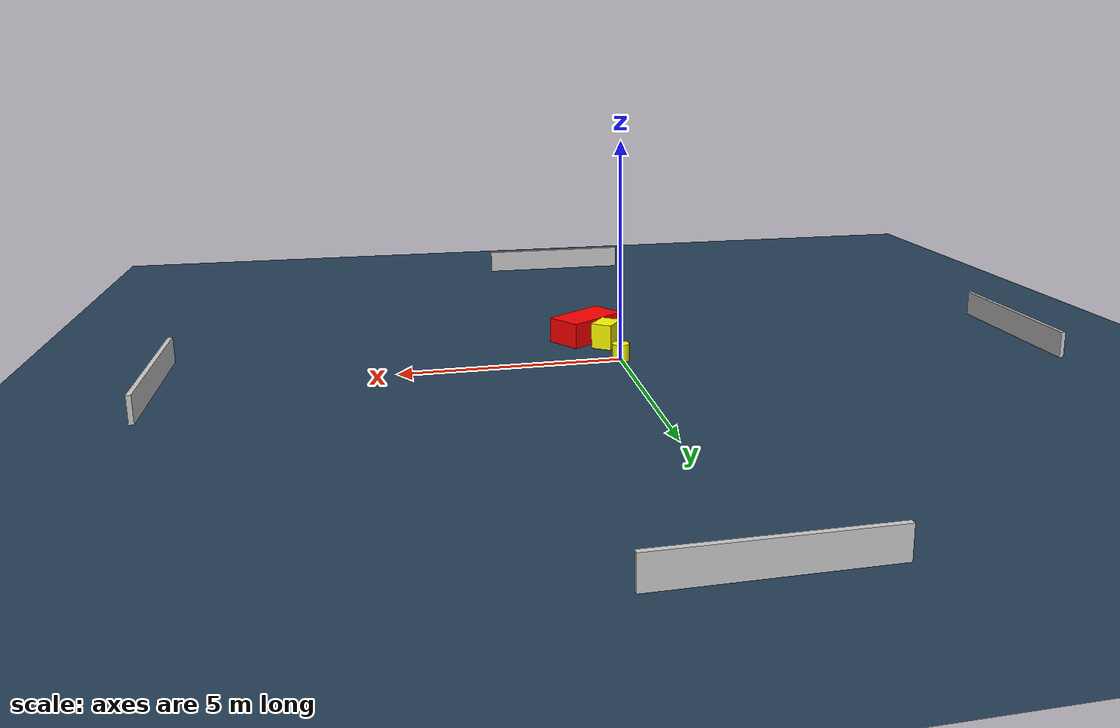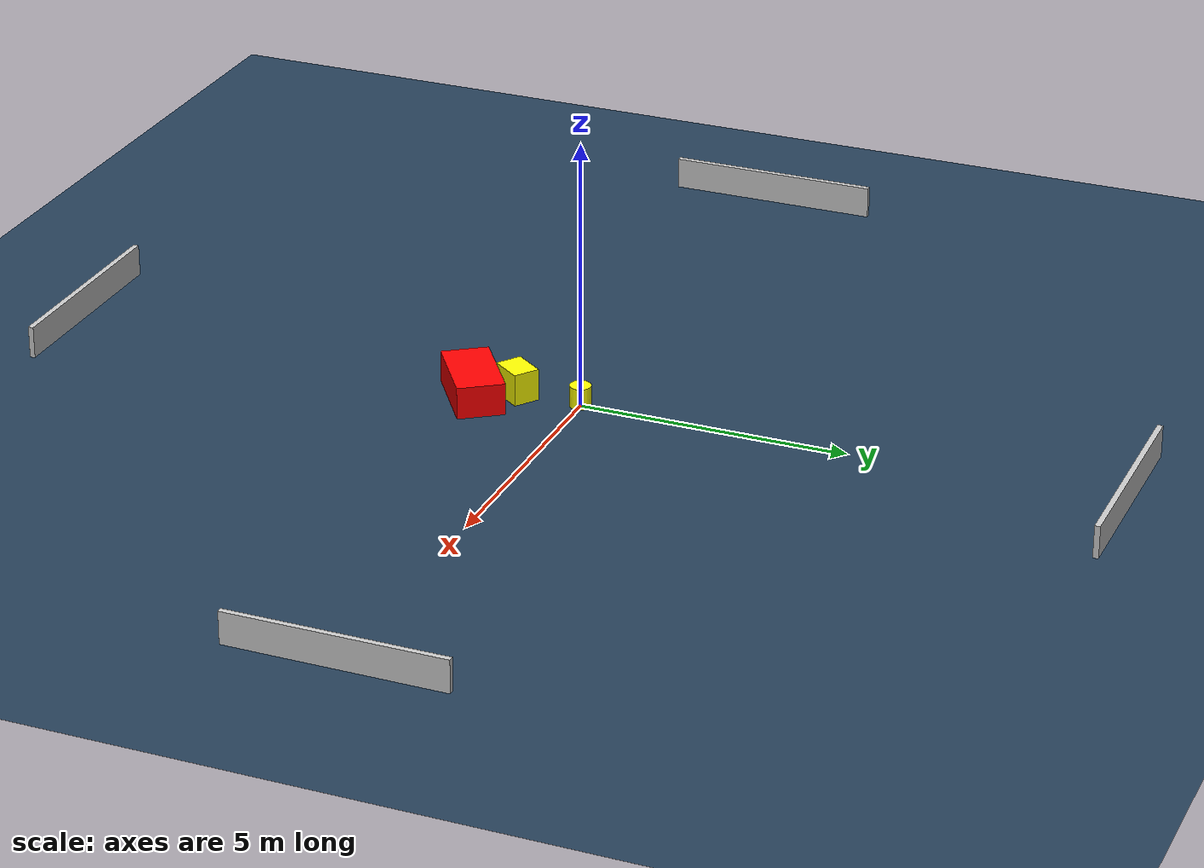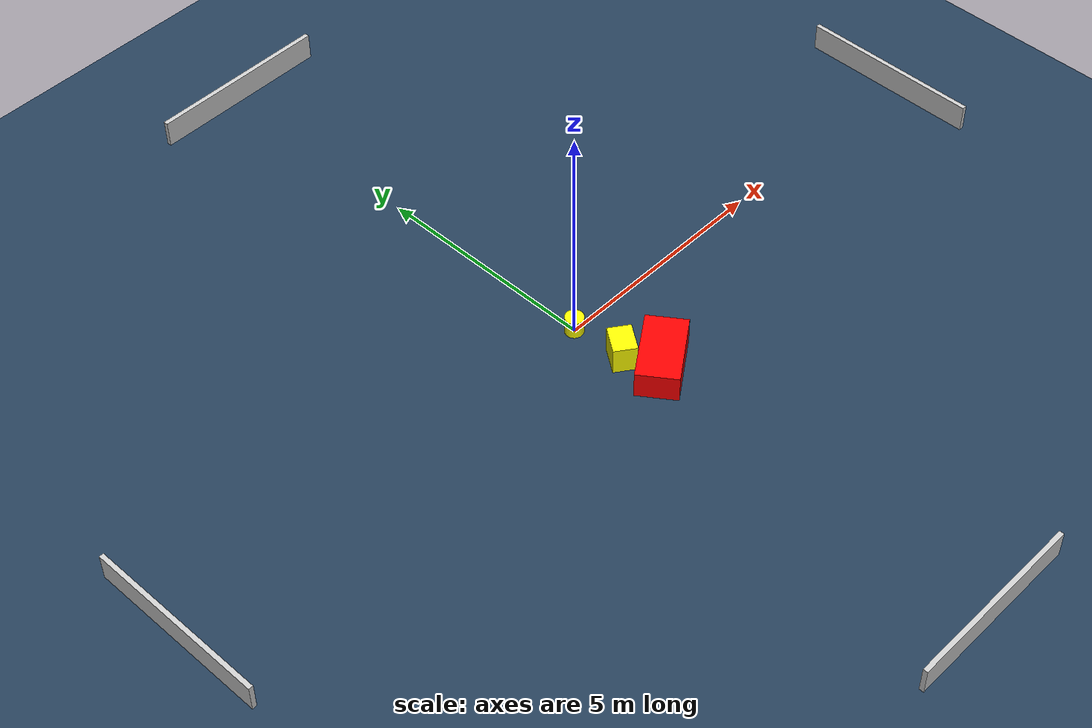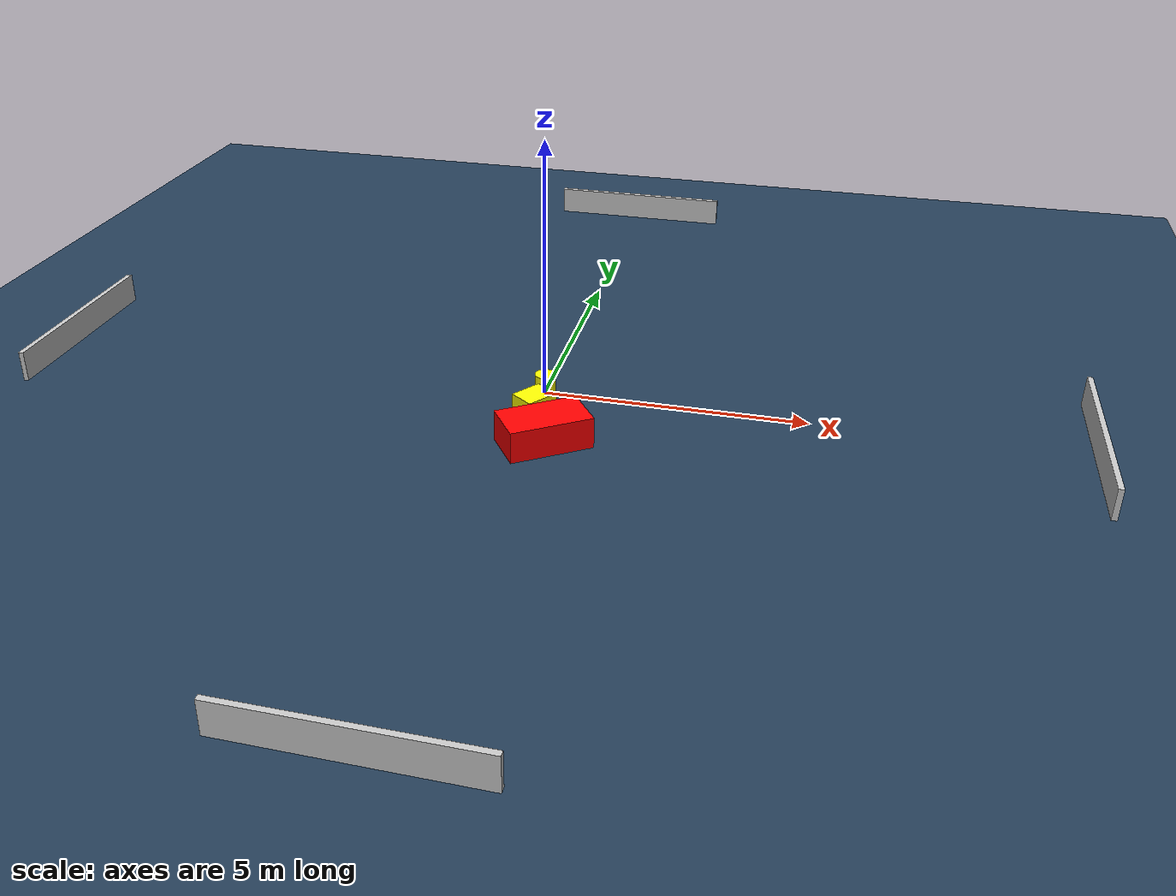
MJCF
<?xml version="1.0" ?>
<mujoco model="generated_environment">
  <option timestep="0.01" integrator="RK4" cone="elliptic"/>
  <default>
    <geom density="1"/>
  </default>
  <asset>
    <texture builtin="gradient" height="3072" name="skybox" rgb1="0.3 0.5 0.7" rgb2="0 0 0" type="skybox" width="512"/>
    <texture builtin="checker" height="300" name="groundplane" rgb1="0.2 0.3 0.4" rgb2="0.1 0.2 0.3" type="2d" width="300"/>
    <material name="groundplane" reflectance="0.2" texrepeat="5 5" texture="groundplane"/>
  </asset>
  <worldbody>
    <light dir="0 0 -1" directional="true" pos="0 0 1.5"/>
    <geom condim="3" friction="0.5 0.005 0.001" material="groundplane" name="floor" pos="0 0 0" size="0 0 0.05" type="plane"/>
    <body name="walls">
      <geom name="wall_1" condim="4" pos="-10.0 0.0 0.3" rgba="0.800000011920929 0.800000011920929 0.800000011920929 1.0" size="0.05 2.0 0.3" type="box"/>
      <geom name="wall_2" condim="4" pos="10.0 0.0 0.3" rgba="0.800000011920929 0.800000011920929 0.800000011920929 1.0" size="0.05 2.0 0.3" type="box"/>
      <geom name="wall_3" condim="4" pos="0.0 -10.0 0.3" rgba="0.800000011920929 0.800000011920929 0.800000011920929 1.0" size="2.0 0.05 0.3" type="box"/>
      <geom name="wall_4" condim="4" pos="0.0 10.0 0.3" rgba="0.800000011920929 0.800000011920929 0.800000011920929 1.0" size="2.0 0.05 0.3" type="box"/>
    </body>
    <body name="robot">
      <joint name="joint_x" type="slide" pos="0 0 0" axis="1 0 0"/>
      <joint name="joint_y" type="slide" pos="0 0 0" axis="0 1 0"/>
      <geom name="robot" type="cylinder" pos="0.0 0.0 0.2" size="0.2 0.2 0.0" mass="5.0" friction="1.0 0.005 0.0001" condim="4" rgba="1.0 1.0 0.0 1.0"/>
    </body>
    <body name="obstacle_1_movable">
      <geom name="obstacle_1_movable" condim="4" pos="0.09117644542079759 -1.1778134946640186 0.3" euler="0 0 324.4276701859021" friction="0.0 0.005 0.001" rgba="1.0 1.0 0.0 1.0" size="0.24927917973530794 0.31581601784428287 0.3" type="box" mass="0.1"/>
      <joint type="free"/>
    </body>
    <body name="obstacle_2_static">
      <geom name="obstacle_2_static" condim="4" pos="0.45030794107870525 -1.8884112372794915 0.3" euler="0 0 124.72447267708363" friction="0.0 0.005 0.001" rgba="1.0 0.0 0.0 1.0" size="0.4408138445365544 0.784846378188012 0.3" type="box"/>
    </body>
  </worldbody>
  <actuator>
    <motor name="actuator_x" joint="joint_x" gear="1" ctrlrange="-1 1"/>
    <motor name="actuator_y" joint="joint_y" gear="1" ctrlrange="-1 1"/>
  </actuator>
</mujoco>
